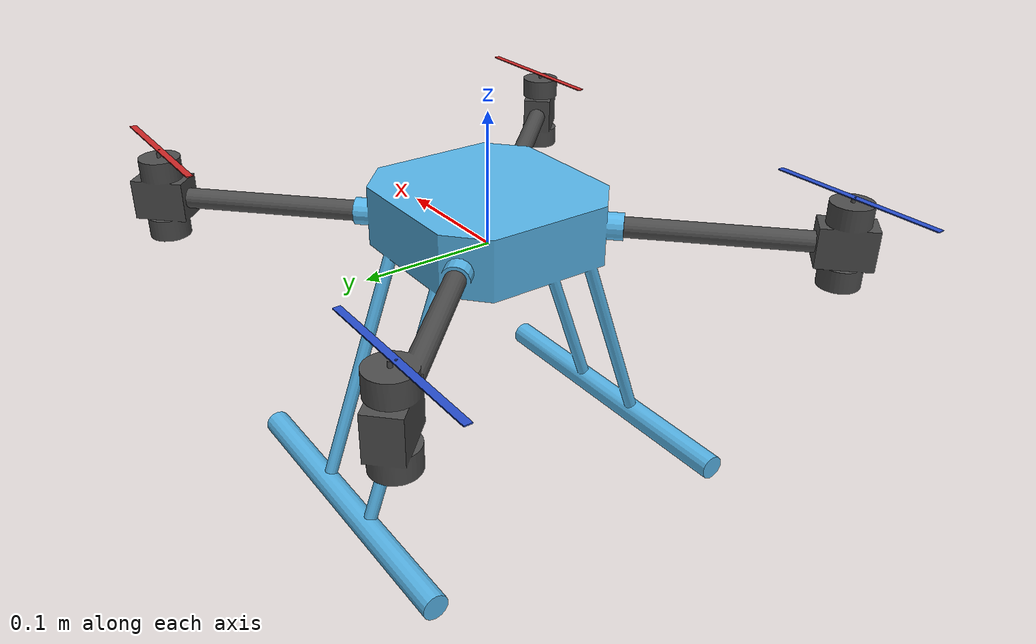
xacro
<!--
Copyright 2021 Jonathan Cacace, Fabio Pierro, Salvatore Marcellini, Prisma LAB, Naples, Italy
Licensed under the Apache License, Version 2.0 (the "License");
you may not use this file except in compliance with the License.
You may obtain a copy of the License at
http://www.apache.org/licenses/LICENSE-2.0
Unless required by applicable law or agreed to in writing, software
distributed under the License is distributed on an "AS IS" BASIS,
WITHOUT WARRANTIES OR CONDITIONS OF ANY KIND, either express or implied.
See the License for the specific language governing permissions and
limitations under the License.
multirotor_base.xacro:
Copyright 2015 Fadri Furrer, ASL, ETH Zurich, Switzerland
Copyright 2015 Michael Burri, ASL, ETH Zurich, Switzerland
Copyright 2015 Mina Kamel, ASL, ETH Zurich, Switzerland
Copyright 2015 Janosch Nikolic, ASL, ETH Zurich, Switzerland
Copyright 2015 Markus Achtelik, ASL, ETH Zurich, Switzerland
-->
<?xml version="1.0"?>

<robot name="ndt2" xmlns:xacro="http://ros.org/wiki/xacro">
	 <!-- Properties (Taken from Novel Dynamic Inversion Architecture Design
for Quadrocopter Control by Jian Wang et al.) -->
  <xacro:property name="namespace" value="ndt2" />
  <xacro:property name="rotor_velocity_slowdown_sim" value="100" />
  <xacro:property name="use_mesh_file" value="true" />
  <xacro:property name="mesh_scale" value="1 1 1"/>
  <xacro:property name="mesh_scale_prop" value="1 1 1"/>
  <xacro:property name="mesh_file" value="ndt2/chassis_res.stl" />
  <xacro:property name="mass" value="5" /> <!-- chassis mass [kg] -->
  <xacro:property name="arm_mass" value="0.1" /> <!-- [kg] -->
  <xacro:property name="body_width" value="0.470" />
  <xacro:property name="body_height" value="0.380" />
  <xacro:property name="mass_rotor" value="0.001" /> <!-- [kg] -->
  <xacro:property name="arm_length" value="0.17" />
  <xacro:property name="arm_width" value="0.340" />
  <xacro:property name="arm_height" value="0.06" />
  <xacro:property name="rotor_offset_top" value="0.01" />
 <xacro:property name="radius_rotor" value="0.128" />
  <xacro:property name="motor_constant" value="8.54858e-05" /> <!-- [kg.m/s^2] -->
  <xacro:property name="moment_constant" value="0.06" />
  <xacro:property name="time_constant_up" value="0.0125" />
  <xacro:property name="time_constant_down" value="0.025" />
  <xacro:property name="max_rot_velocity" value="1100" /> <!-- [rad/s] -->
  <xacro:property name="sin30" value="0.5" />
  <xacro:property name="cos30" value="0.866025403784" />
  <xacro:property name="sqrt2" value="1.4142135623730951" />
  <xacro:property name="rotor_drag_coefficient" value="1.75e-04" />
  <xacro:property name="rolling_moment_coefficient" value="0.000001" />
  <xacro:property name="color" value="$(arg visual_material)" />

	<xacro:property name="x_rotor" value="0.121"  />
	<xacro:property name="y_rotor" value="0.121"  />
	<xacro:property name="z_rotor" value="0.035"  />

	<xacro:include filename="$(find mav_description)/urdf/ndt2/ndt2.trans" />
	<xacro:include filename="$(find mav_description)/urdf/ndt2/ndt2.gazebo" />

   <!-- Property Blocks -->
  <xacro:property name="body_inertia">
		<inertia
		  ixx="${1/12 * mass * (body_height * body_height + body_width * body_width)}"
		  iyy="${1/12 * mass * (body_height * body_height + body_width * body_width)}"
		  izz="${1/12 * mass * (body_width * body_width + body_width * body_width)}"
		  ixy="0.0" ixz="0.0" iyz="0.0"
		/>
  </xacro:property>

 <xacro:property name="rotor_inertia">
    <inertia
    ixx="${1/12 * mass_rotor * (0.015 * 0.015 + 0.003 * 0.003) * rotor_velocity_slowdown_sim}"
    iyy="${1/12 * mass_rotor * (4 * radius_rotor * radius_rotor + 0.003 * 0.003) * rotor_velocity_slowdown_sim}"
    izz="${1/12 * mass_rotor * (4 * radius_rotor * radius_rotor + 0.015 * 0.015) * rotor_velocity_slowdown_sim}"
    ixy="0.0" ixz="0.0"  iyz="0.0" />
  </xacro:property>
  <!-- Included URDF Files -->
  <xacro:include filename="$(find mav_description)/urdf/multirotor_base.xacro" />

  <!-- Instantiate multirotor_base_macro once -->
  <xacro:multirotor_base_macro
    robot_namespace="${namespace}"
    mass="${mass}"
    body_width="${body_width}"
    body_height="${body_height}"
    mesh_file="${mesh_file}"
    mesh_scale="${mesh_scale}"
    color="Gray">
    <xacro:insert_block name="body_inertia" />
  </xacro:multirotor_base_macro>

   <xacro:property name="arm_inertia">
    <inertia
    ixx="${1/12 * arm_mass * (arm_height * arm_height + arm_width * arm_width)}"
    iyy="${1/12 * arm_mass * (arm_height * arm_height + arm_width * arm_width)}"
    izz="${1/12 * arm_mass * (arm_width  * arm_width  + arm_width * arm_width)}"
    ixy="0.0" ixz="0.0" iyz="0.0" />
  </xacro:property>

  <link name="arm_4">
    <inertial>
      <origin rpy="0 0 0" xyz="0.083 -0.083 0"/>
      <mass value="${arm_mass}"/>
      <xacro:insert_block name="arm_inertia" />
    </inertial>
    <visual>
      <origin rpy="0 0 3.1415" xyz="0.0 0.0 -0.02"/>
      <geometry>
        <mesh filename="$(find mav_description)/meshes/ndt2/arm_4.stl"/>
      </geometry>
    </visual>
    <collision>
      <origin rpy="0 0 3.1415" xyz="0.0 0.0 -0.02"/>
      <geometry>
        <mesh filename="$(find mav_description)/meshes/ndt2/arm_4.stl"/>
      </geometry>
    </collision>
  </link>
   <joint name="tilt_motor_4" type="revolute">
    <origin rpy="0 0 3.1415" xyz="0.0 0.0 0.02"/>

    <parent link="base_link"/>
    <child link="arm_4"/>
    <axis xyz="-0.707107 0.707107 0.0"/>
    <limit effort="30" velocity="1.0" lower="-1.57" upper="1.57"/>
  </joint>

   <link name="arm_2">
    <inertial>
      <origin rpy="0 0 0" xyz="-0.083 0.083 0"/>
      <mass value="${arm_mass}"/>
      <xacro:insert_block name="arm_inertia" />
    </inertial>
    <visual>
      <origin rpy="0 0 0" xyz="0.0 -0.0 -0.02"/>
      <geometry>
        <mesh filename="$(find mav_description)/meshes/ndt2/arm_2.stl"/>
      </geometry>
    </visual>
    <collision>
      <origin rpy="0 0 0" xyz="0.0 -0.0 -0.02"/>
      <geometry>
        <mesh filename="$(find mav_description)/meshes/ndt2/arm_2.stl"/>
      </geometry>
    </collision>
  </link>
  <joint name="tilt_motor_2" type="revolute">
    <origin rpy="0 0 0" xyz="-0.0 0.0 0.02"/>
    <parent link="base_link"/>
    <child link="arm_2"/>
    <axis xyz="-0.707107 0.707107 0.0"/>
    <limit effort="30" velocity="1.0" lower="-1.57" upper="1.57"/>
  </joint>

   <link name="arm_3">
    <inertial>
      <origin rpy="0 0 0" xyz="-0.083 -0.083 0"/>
      <mass value="${arm_mass}"/>
      <xacro:insert_block name="arm_inertia" />
    </inertial>
    <visual>
      <origin rpy="0 0 3.1415" xyz="0.0 0.0 -0.02"/>
      <geometry>
        <mesh filename="$(find mav_description)/meshes/ndt2/arm_3.stl"/>
      </geometry>

    </visual>
    <collision>
      <origin rpy="0 0 3.1415" xyz="0.0 0.0 -0.02"/>
      <geometry>
        <mesh filename="$(find mav_description)/meshes/ndt2/arm_3.stl"/>
      </geometry>
    </collision>
  </link>

   <joint name="tilt_motor_3" type="revolute">
    <origin rpy="0 0 3.1415" xyz="0.0 0.0 0.02"/>
    <parent link="base_link"/>
    <child link="arm_3"/>
    <axis xyz="0.707107 0.707107 0.0"/>
    <limit effort="30" velocity="1.0" lower="-1.57" upper="1.57"/>
  </joint>

  <link name="arm_1">
    <inertial>
      <origin rpy="0 0 0" xyz="0.083 0.083 0"/>
      <mass value="${arm_mass}"/>
      <xacro:insert_block name="arm_inertia" />
    </inertial>
    <visual>
      <origin rpy="0 0 3.1415" xyz="0.0 0.0 -0.02"/>
      <geometry>
        <mesh filename="$(find mav_description)/meshes/ndt2/arm_1.stl"/>
      </geometry>

    </visual>
    <collision>
      <origin rpy="0 0 3.1415" xyz="0.0 0.0 -0.02"/>
      <geometry>
        <mesh filename="$(find mav_description)/meshes/ndt2/arm_1.stl"/>
      </geometry>
    </collision>
  </link>
 <joint name="tilt_motor_1" type="revolute">
    <origin rpy="0 0 3.1415" xyz="0.0 0.0 0.02"/>
    <parent link="base_link"/>
    <child link="arm_1"/>
    <axis xyz="-0.707107 -0.707107 0.0"/>
    <limit effort="30" velocity="1.0" lower="-1.57" upper="1.57"/>
  </joint>

    <xacro:vertical_rotor
    robot_namespace="${namespace}"
    suffix="front_right"
    direction="ccw"
    motor_constant="${motor_constant}"
    moment_constant="${moment_constant}"
    parent="arm_4"
    mass_rotor="${mass_rotor}"
    radius_rotor="${radius_rotor}"
    time_constant_up="${time_constant_up}"
    time_constant_down="${time_constant_down}"
    max_rot_velocity="${max_rot_velocity}"
    motor_number="0"
    rotor_drag_coefficient="${rotor_drag_coefficient}"
    rolling_moment_coefficient="${rolling_moment_coefficient}"
    mesh_scale="${mesh_scale_prop}"
    color="Red"
    mesh="ndt2/prop.stl">
    <origin xyz="-0.175 0.175 ${z_rotor}" rpy="0 0 0" />
    <xacro:insert_block name="rotor_inertia" />
  </xacro:vertical_rotor>

  <xacro:vertical_rotor
    robot_namespace="${namespace}"
    suffix="rear_left"
    direction="ccw"
    motor_constant="${motor_constant}"
    moment_constant="${moment_constant}"
    parent="arm_2"
    mass_rotor="${mass_rotor}"
    radius_rotor="${radius_rotor}"
    time_constant_up="${time_constant_up}"
    time_constant_down="${time_constant_down}"
    max_rot_velocity="${max_rot_velocity}"
    motor_number="1"
    rotor_drag_coefficient="${rotor_drag_coefficient}"
    rolling_moment_coefficient="${rolling_moment_coefficient}"
    mesh_scale="${mesh_scale_prop}"
    color="Blue"
    mesh="ndt2/prop.stl">
    <origin xyz="-0.175 0.175 ${z_rotor}" rpy="0 0 0" />
    <xacro:insert_block name="rotor_inertia" />
  </xacro:vertical_rotor>

	 <xacro:vertical_rotor
    robot_namespace="${namespace}"
    suffix="front_left"
    direction="cw"
    motor_constant="${motor_constant}"
    moment_constant="${moment_constant}"
    parent="arm_1"
    mass_rotor="${mass_rotor}"
    radius_rotor="${radius_rotor}"
    time_constant_up="${time_constant_up}"
    time_constant_down="${time_constant_down}"
    max_rot_velocity="${max_rot_velocity}"
    motor_number="2"
    rotor_drag_coefficient="${rotor_drag_coefficient}"
    rolling_moment_coefficient="${rolling_moment_coefficient}"
    mesh_scale="${mesh_scale_prop}"
    color="Red"
    mesh="ndt2/prop.stl">
    <origin xyz="-0.175 -0.175 ${z_rotor}" rpy="0 0 0" />
    <xacro:insert_block name="rotor_inertia" />
  </xacro:vertical_rotor>

  <xacro:vertical_rotor
    robot_namespace="${namespace}"
    suffix="rear_right"
    direction="cw"
    motor_constant="${motor_constant}"
    moment_constant="${moment_constant}"
    parent="arm_3"
    mass_rotor="${mass_rotor}"
    radius_rotor="${radius_rotor}"
    time_constant_up="${time_constant_up}"
    time_constant_down="${time_constant_down}"
    max_rot_velocity="${max_rot_velocity}"
    motor_number="3"
    rotor_drag_coefficient="${rotor_drag_coefficient}"
    rolling_moment_coefficient="${rolling_moment_coefficient}"
    mesh_scale="${mesh_scale_prop}"
    color="Blue"
    mesh="ndt2/prop.stl">
    <origin xyz="0.175 0.175 ${z_rotor}" rpy="0 0 0" />
    <xacro:insert_block name="rotor_inertia" />
  </xacro:vertical_rotor>

  <!-- CAMERA SENSOR -->

   <link name="camera_link">
    <inertial>
      <origin rpy="0 0 0" xyz="0 0 0"/>
      <mass value="0.01"/>
      <xacro:insert_block name="arm_inertia" />
    </inertial>
    <visual>
      <origin rpy="0 0 0" xyz="0.0 0.0 0"/>
      <geometry>
        <box size="0.02 0.02 0.02"/>
      </geometry>
	 <material name="red">
	  <color rgba="${204/255} ${0/255} ${0/255} 1.0"/>
	</material>
    </visual>
  </link>

   <joint name="camera_joint" type="fixed">
    <origin rpy="0 0 0.0" xyz="0.085 0.0 0.01"/>
    <parent link="base_link"/>
    <child link="camera_link"/>
  </joint>

  <gazebo reference="camera_link">
    <sensor type="camera" name="camera1">
      <update_rate>30.0</update_rate>
      <camera name="head">
        <horizontal_fov>1.3962634</horizontal_fov>
        <image>
          <width>800</width>
          <height>600</height>
          <format>R8G8B8</format>
        </image>
        <clip>
          <near>0.02</near>
          <far>300</far>
        </clip>
        <noise>
          <type>gaussian</type>
          <mean>0.0</mean>
          <stddev>0.007</stddev>
        </noise>
      </camera>
      <plugin name="camera_controller" filename="libgazebo_ros_camera.so">
        <alwaysOn>true</alwaysOn>
        <updateRate>0.0</updateRate>
        <cameraName>/camera</cameraName>
        <imageTopicName>image_raw</imageTopicName>
        <cameraInfoTopicName>camera_info</cameraInfoTopicName>
        <frameName>camera_link</frameName>
        <hackBaseline>0.07</hackBaseline>
        <distortionK1>0.0</distortionK1>
        <distortionK2>0.0</distortionK2>
        <distortionK3>0.0</distortionK3>
        <distortionT1>0.0</distortionT1>
        <distortionT2>0.0</distortionT2>
      </plugin>
    </sensor>
  </gazebo>

</robot>

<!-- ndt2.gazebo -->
<robot name="ndt2" xmlns:xacro="http://www.ros.org/wiki/xacro" >

  <xacro:property name="body_color" value="DarkGrey" />

  <gazebo reference="base_link">
    <material>${body_color}</material>
    <selfCollide>true</selfCollide>
    <gravity>true</gravity>
  </gazebo>

  <gazebo reference="arm_4">
    <material>${body_color}</material>
    <mu1>0.2</mu1>
    <mu2>0.2</mu2>
    <selfCollide>true</selfCollide>
  </gazebo>

  <gazebo reference="arm_2">
    <material>${body_color}</material>
    <mu1>0.2</mu1>
    <mu2>0.2</mu2>
    <selfCollide>true</selfCollide>
  </gazebo>

  <gazebo reference="arm_3">
    <material>${body_color}</material>
    <mu1>0.2</mu1>
    <mu2>0.2</mu2>
    <selfCollide>true</selfCollide>
  </gazebo>

  <gazebo reference="arm_1">
    <material>${body_color}</material>
    <mu1>0.2</mu1>
    <mu2>0.2</mu2>
    <selfCollide>true</selfCollide>
  </gazebo>
</robot>

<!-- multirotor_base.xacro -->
<robot xmlns:xacro="http://ros.org/wiki/xacro">
  <!-- Main multirotor link -->
  <xacro:macro name="multirotor_base_macro"
    params="robot_namespace mass body_width body_height mesh_file mesh_scale color *inertia">
    <link name="base_link"></link>

    <joint name="base_joint" type="fixed">
      <origin xyz="0 0 0" rpy="0 0 0" />
      <parent link="base_link" />
      <child link="base_link_inertia" />
    </joint>

    <link name="base_link_inertia">
      <inertial>
        <mass value="${mass}" />  <!-- [kg] -->
        <origin xyz="0 0 0" />
        <xacro:insert_block name="inertia" />
      </inertial>

      <visual>
        <origin xyz="0 0 0" rpy="0 0 0" />
        <geometry>
          <mesh filename="package://mav_description/meshes/${mesh_file}"
            scale="${mesh_scale}" />

        </geometry>
      </visual>

      <collision>
        <origin xyz="0 0 0" rpy="0 0 0" />
        <geometry>
          <mesh filename="package://mav_description/meshes/${mesh_file}"
            scale="${mesh_scale}" />
        </geometry>
      </collision>
    </link>

    <!-- attach multirotor_base_plugin to the base_link -->
    <gazebo>
      <plugin filename="librotors_gazebo_multirotor_base_plugin.so" name="rosbag">
        <robotNamespace>${robot_namespace}</robotNamespace>
        <linkName>base_link</linkName>
        <rotorVelocitySlowdownSim>${rotor_velocity_slowdown_sim}</rotorVelocitySlowdownSim>
      </plugin>
    </gazebo>
    <gazebo reference="base_link">
      <material>Gazebo/${color}</material>
      <collision name='base_link_inertia_collision'>
        <surface>
          <contact>
            <ode>
              <min_depth>0.001</min_depth>
              <max_vel>0.0</max_vel>
            </ode>
          </contact>
          <friction>
            <ode/>
          </friction>
        </surface>
      </collision>
   </gazebo>
  </xacro:macro>

  <!-- Rotor joint and link -->
  <xacro:macro name="vertical_rotor"
    params="robot_namespace suffix direction motor_constant moment_constant parent mass_rotor radius_rotor time_constant_up time_constant_down max_rot_velocity motor_number rotor_drag_coefficient rolling_moment_coefficient color mesh mesh_scale *origin *inertia">
    <joint name="rotor_${motor_number}_joint" type="continuous">
      <xacro:insert_block name="origin" />
      <axis xyz="0 0 1" />
      <!-- TODO(ff): not currently set because it's not yet supported -->
      <parent link="${parent}" />
      <child link="rotor_${motor_number}" />

    </joint>
    <!-- TODO(ff): not currently set because it's not yet supported -->
    <link name="rotor_${motor_number}">
      <inertial>
        <mass value="${mass_rotor}" /> <!-- [kg] -->
        <xacro:insert_block name="inertia" />
      </inertial>
      <visual>
        <geometry>

          <mesh filename="package://mav_description/meshes/${mesh}_${direction}.dae"
            scale="${mesh_scale}" />
        </geometry>
      </visual>
      <collision>
        <geometry>
          <cylinder length="0.005" radius="${radius_rotor}" />
        </geometry>
      </collision>
    </link>
    <gazebo>
      <plugin name="${suffix}_motor_model" filename="librotors_gazebo_motor_model.so">
        <robotNamespace>${robot_namespace}</robotNamespace>
        <jointName>rotor_${motor_number}_joint</jointName>
        <linkName>rotor_${motor_number}</linkName>
        <turningDirection>${direction}</turningDirection>
        <timeConstantUp>${time_constant_up}</timeConstantUp>
        <timeConstantDown>${time_constant_down}</timeConstantDown>
        <maxRotVelocity>${max_rot_velocity}</maxRotVelocity>
        <motorConstant>${motor_constant}</motorConstant>
        <momentConstant>${moment_constant}</momentConstant>
        <commandSubTopic>/gazebo/command/motor_speed</commandSubTopic>
        <motorNumber>${motor_number}</motorNumber>
        <rotorDragCoefficient>${rotor_drag_coefficient}</rotorDragCoefficient>
        <rollingMomentCoefficient>${rolling_moment_coefficient}</rollingMomentCoefficient>
        <motorSpeedPubTopic>/motor_speed/${motor_number}</motorSpeedPubTopic>
        <rotorVelocitySlowdownSim>${rotor_velocity_slowdown_sim}</rotorVelocitySlowdownSim>
      </plugin>
    </gazebo>
    <gazebo reference="rotor_${motor_number}">
      <material>Gazebo/${color}</material>
    </gazebo>
  </xacro:macro>

</robot>
